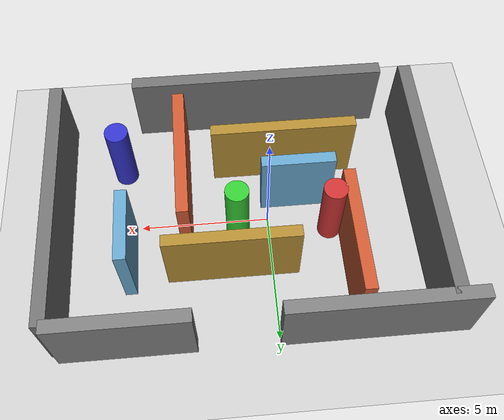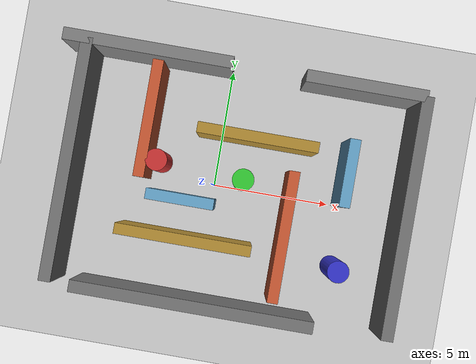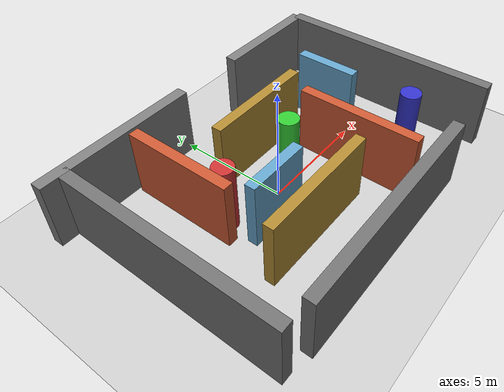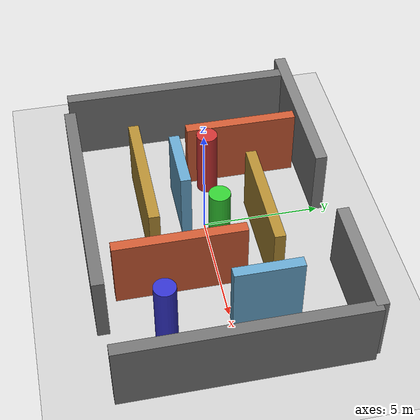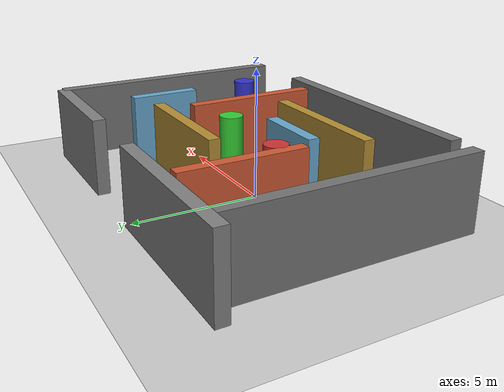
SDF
<?xml version="1.0" encoding="UTF-8"?>
<sdf version="1.9">
  <world name="obstacle_maze">
    <physics type="ode">
      <max_step_size>0.004</max_step_size>
      <real_time_factor>1.0</real_time_factor>
      <real_time_update_rate>250</real_time_update_rate>
    </physics>
    <plugin name="gz::sim::systems::Physics" filename="gz-sim-physics-system"/>
    <plugin name="gz::sim::systems::UserCommands" filename="gz-sim-user-commands-system"/>
    <plugin name="gz::sim::systems::SceneBroadcaster" filename="gz-sim-scene-broadcaster-system"/>
    <plugin name="gz::sim::systems::Contact" filename="gz-sim-contact-system"/>
    <plugin name="gz::sim::systems::Imu" filename="gz-sim-imu-system"/>
    <plugin name="gz::sim::systems::AirPressure" filename="gz-sim-air-pressure-system"/>
    <plugin name="gz::sim::systems::ApplyLinkWrench" filename="gz-sim-apply-link-wrench-system"/>
    <plugin name="gz::sim::systems::NavSat" filename="gz-sim-navsat-system"/>
    <plugin name="gz::sim::systems::Sensors" filename="gz-sim-sensors-system">
      <render_engine>ogre2</render_engine>
    </plugin>
    <gravity>0 0 -9.8</gravity>
    <magnetic_field>6e-06 2.3e-05 -4.2e-05</magnetic_field>
    <atmosphere type="adiabatic"/>
    <scene>
      <grid>false</grid>
      <ambient>0.4 0.4 0.4 1</ambient>
      <background>0.7 0.7 0.7 1</background>
      <shadows>true</shadows>
    </scene>
    <model name="ground_plane">
      <static>true</static>
      <link name="link">
        <collision name="collision">
          <geometry>
            <plane>
              <normal>0 0 1</normal>
              <size>1 1</size>
            </plane>
          </geometry>
          <surface>
            <friction><ode/></friction>
            <bounce/>
            <contact/>
          </surface>
        </collision>
        <visual name="visual">
          <geometry>
            <plane>
              <normal>0 0 1</normal>
              <size>100 100</size>
            </plane>
          </geometry>
          <material>
            <ambient>0.8 0.8 0.8 1</ambient>
            <diffuse>0.8 0.8 0.8 1</diffuse>
            <specular>0.8 0.8 0.8 1</specular>
          </material>
        </visual>
        <pose>0 0 0 0 -0 0</pose>
        <inertial>
          <pose>0 0 0 0 -0 0</pose>
          <mass>1</mass>
          <inertia>
            <ixx>1</ixx><ixy>0</ixy><ixz>0</ixz>
            <iyy>1</iyy><iyz>0</iyz>
            <izz>1</izz>
          </inertia>
        </inertial>
        <enable_wind>false</enable_wind>
      </link>
      <pose>0 0 0 0 -0 0</pose>
      <self_collide>false</self_collide>
    </model>
    <light name="sunUTC" type="directional">
      <pose>0 0 500 0 -0 0</pose>
      <cast_shadows>true</cast_shadows>
      <intensity>1</intensity>
      <direction>0.001 0.625 -0.78</direction>
      <diffuse>0.904 0.904 0.904 1</diffuse>
      <specular>0.271 0.271 0.271 1</specular>
      <attenuation>
        <range>2000</range>
        <linear>0</linear>
        <constant>1</constant>
        <quadratic>0</quadratic>
      </attenuation>
      <spot>
        <inner_angle>0</inner_angle>
        <outer_angle>0</outer_angle>
        <falloff>0</falloff>
      </spot>
    </light>
    <spherical_coordinates>
      <surface_model>EARTH_WGS84</surface_model>
      <world_frame_orientation>ENU</world_frame_orientation>
      <latitude_deg>47.397971057728974</latitude_deg>
      <longitude_deg> 8.546163739800146</longitude_deg>
      <elevation>0</elevation>
    </spherical_coordinates>

    <!-- MINI MAZE OBSTACLES                             -->
    <!-- Spawn at (0, 0) is intentionally clear.          -->
    <model name="maze_wall_north_left">
      <static>true</static>
      <pose>-3.5 5 1.5 0 0 0</pose>
      <link name="link">
        <collision name="collision"><geometry><box><size>7 0.5 3</size></box></geometry></collision>
        <visual name="visual"><geometry><box><size>7 0.5 3</size></box></geometry><material><ambient>0.5 0.5 0.5 1</ambient><diffuse>0.5 0.5 0.5 1</diffuse></material></visual>
      </link>
    </model>
    <model name="maze_wall_north_right">
      <static>true</static>
      <pose>5.5 5 1.5 0 0 0</pose>
      <link name="link">
        <collision name="collision"><geometry><box><size>5 0.5 3</size></box></geometry></collision>
        <visual name="visual"><geometry><box><size>5 0.5 3</size></box></geometry><material><ambient>0.5 0.5 0.5 1</ambient><diffuse>0.5 0.5 0.5 1</diffuse></material></visual>
      </link>
    </model>
    <model name="maze_wall_south">
      <static>true</static>
      <pose>0 -5 1.5 0 0 0</pose>
      <link name="link">
        <collision name="collision"><geometry><box><size>10 0.5 3</size></box></geometry></collision>
        <visual name="visual"><geometry><box><size>10 0.5 3</size></box></geometry><material><ambient>0.45 0.45 0.45 1</ambient><diffuse>0.45 0.45 0.45 1</diffuse></material></visual>
      </link>
    </model>
    <model name="maze_wall_west">
      <static>true</static>
      <pose>-6 0 1.5 0 0 1.57079632679</pose>
      <link name="link">
        <collision name="collision"><geometry><box><size>10 0.5 3</size></box></geometry></collision>
        <visual name="visual"><geometry><box><size>10 0.5 3</size></box></geometry><material><ambient>0.45 0.45 0.45 1</ambient><diffuse>0.45 0.45 0.45 1</diffuse></material></visual>
      </link>
    </model>
    <model name="maze_wall_east">
      <static>true</static>
      <pose>8 0 1.5 0 0 1.57079632679</pose>
      <link name="link">
        <collision name="collision"><geometry><box><size>10 0.5 3</size></box></geometry></collision>
        <visual name="visual"><geometry><box><size>10 0.5 3</size></box></geometry><material><ambient>0.45 0.45 0.45 1</ambient><diffuse>0.45 0.45 0.45 1</diffuse></material></visual>
      </link>
    </model>

    <model name="inner_wall_left_gate">
      <static>true</static>
      <pose>-3 2.2 1.5 0 0 1.57079632679</pose>
      <link name="link">
        <collision name="collision"><geometry><box><size>4.8 0.45 3</size></box></geometry></collision>
        <visual name="visual"><geometry><box><size>4.8 0.45 3</size></box></geometry><material><ambient>0.8 0.35 0.2 1</ambient><diffuse>0.8 0.35 0.2 1</diffuse></material></visual>
      </link>
    </model>
    <model name="inner_wall_right_gate">
      <static>true</static>
      <pose>3.2 -1.6 1.5 0 0 1.57079632679</pose>
      <link name="link">
        <collision name="collision"><geometry><box><size>5.4 0.45 3</size></box></geometry></collision>
        <visual name="visual"><geometry><box><size>5.4 0.45 3</size></box></geometry><material><ambient>0.8 0.35 0.2 1</ambient><diffuse>0.8 0.35 0.2 1</diffuse></material></visual>
      </link>
    </model>
    <model name="inner_wall_top_channel">
      <static>true</static>
      <pose>1.5 2.2 1.5 0 0 0</pose>
      <link name="link">
        <collision name="collision"><geometry><box><size>5 0.45 3</size></box></geometry></collision>
        <visual name="visual"><geometry><box><size>5 0.45 3</size></box></geometry><material><ambient>0.7 0.55 0.2 1</ambient><diffuse>0.7 0.55 0.2 1</diffuse></material></visual>
      </link>
    </model>
    <model name="inner_wall_bottom_channel">
      <static>true</static>
      <pose>-0.8 -2.4 1.5 0 0 0</pose>
      <link name="link">
        <collision name="collision"><geometry><box><size>5.6 0.45 3</size></box></geometry></collision>
        <visual name="visual"><geometry><box><size>5.6 0.45 3</size></box></geometry><material><ambient>0.7 0.55 0.2 1</ambient><diffuse>0.7 0.55 0.2 1</diffuse></material></visual>
      </link>
    </model>
    <model name="short_wall_exit_deflector">
      <static>true</static>
      <pose>5.4 1.4 1.5 0 0 1.57079632679</pose>
      <link name="link">
        <collision name="collision"><geometry><box><size>2.8 0.45 3</size></box></geometry></collision>
        <visual name="visual"><geometry><box><size>2.8 0.45 3</size></box></geometry><material><ambient>0.4 0.65 0.8 1</ambient><diffuse>0.4 0.65 0.8 1</diffuse></material></visual>
      </link>
    </model>
    <model name="short_wall_start_deflector">
      <static>true</static>
      <pose>-1.2 -0.8 1.5 0 0 0</pose>
      <link name="link">
        <collision name="collision"><geometry><box><size>2.8 0.45 3</size></box></geometry></collision>
        <visual name="visual"><geometry><box><size>2.8 0.45 3</size></box></geometry><material><ambient>0.4 0.65 0.8 1</ambient><diffuse>0.4 0.65 0.8 1</diffuse></material></visual>
      </link>
    </model>

    <model name="maze_pillar_start_left">
      <static>true</static>
      <pose>-2.4 0.6 1.5 0 0 0</pose>
      <link name="link">
        <collision name="collision"><geometry><cylinder><radius>0.45</radius><length>3</length></cylinder></geometry></collision>
        <visual name="visual"><geometry><cylinder><radius>0.45</radius><length>3</length></cylinder></geometry><material><ambient>0.8 0.2 0.2 1</ambient><diffuse>0.8 0.2 0.2 1</diffuse></material></visual>
      </link>
    </model>
    <model name="maze_pillar_center">
      <static>true</static>
      <pose>1.2 0.4 1.5 0 0 0</pose>
      <link name="link">
        <collision name="collision"><geometry><cylinder><radius>0.45</radius><length>3</length></cylinder></geometry></collision>
        <visual name="visual"><geometry><cylinder><radius>0.45</radius><length>3</length></cylinder></geometry><material><ambient>0.2 0.8 0.2 1</ambient><diffuse>0.2 0.8 0.2 1</diffuse></material></visual>
      </link>
    </model>
    <model name="maze_pillar_exit">
      <static>true</static>
      <pose>5.6 -2.6 1.5 0 0 0</pose>
      <link name="link">
        <collision name="collision"><geometry><cylinder><radius>0.45</radius><length>3</length></cylinder></geometry></collision>
        <visual name="visual"><geometry><cylinder><radius>0.45</radius><length>3</length></cylinder></geometry><material><ambient>0.2 0.2 0.8 1</ambient><diffuse>0.2 0.2 0.8 1</diffuse></material></visual>
      </link>
    </model>
  </world>
</sdf>
